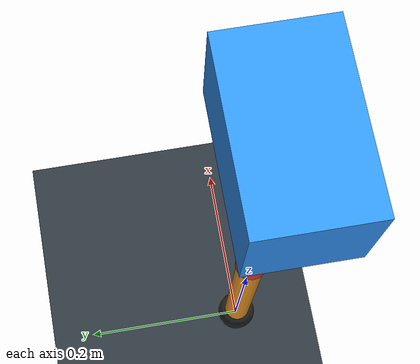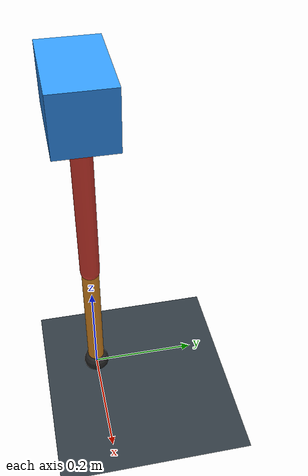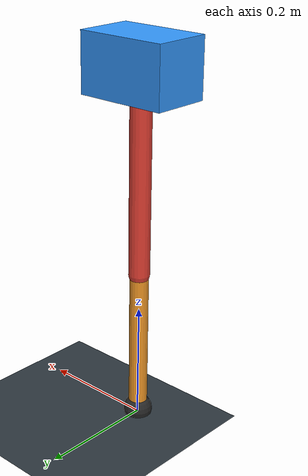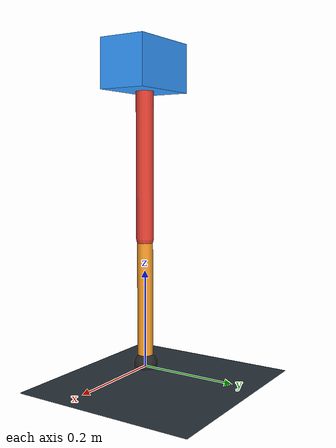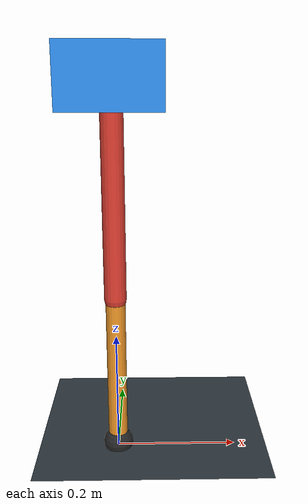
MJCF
<mujoco model="single_axis_two_bar">
  <compiler angle="radian" inertiafromgeom="true"/>
  <option timestep="0.001" integrator="implicitfast" gravity="0 0 -9.81"/>
  <default>
    <joint damping="0.08"/>
    <geom friction="1.2 0.01 0.0001" condim="3"/>
  </default>
  <worldbody>
    <geom name="floor" type="plane" size="5 5 0.1" rgba="0.18 0.22 0.25 1"/>
    <body name="carriage" pos="0 0 0.614679305505025">
      <joint name="pole_slide" type="slide" axis="0 0 1"/>
      <geom name="payload" type="box" size="0.08 0.05 0.05" mass="3.1608075138076894" rgba="0.2 0.6 1 1"/>
      <body name="thigh" pos="0 0 0">
        <joint name="hip" type="hinge" axis="0 1 0"/>
        <geom name="thigh_link" type="capsule" fromto="0 0 0 0 0 -0.34927747294529615" size="0.018" mass="0.24886481476812858" rgba="0.9 0.25 0.2 1"/>
        <body name="shank" pos="0 0 -0.34927747294529615">
          <joint name="knee" type="hinge" axis="0 1 0"/>
          <geom name="shank_link" type="capsule" fromto="0 0 0 0 0 -0.2586393368536987" size="0.016" mass="0.1842839451255661" rgba="0.95 0.6 0.15 1"/>
          <geom name="foot" type="sphere" pos="0 0 -0.2586393368536987" size="0.025" mass="0.03" rgba="0.15 0.15 0.15 1"/>
          <site name="toe" pos="0 0 -0.2586393368536987" size="0.008"/>
        </body>
      </body>
    </body>
  </worldbody>
  <actuator>
    <motor name="hip_motor" joint="hip" ctrlrange="-32.45585740305246 32.45585740305246"/>
    <motor name="knee_motor" joint="knee" ctrlrange="-136.25374209406624 136.25374209406624"/>
  </actuator>
</mujoco>
